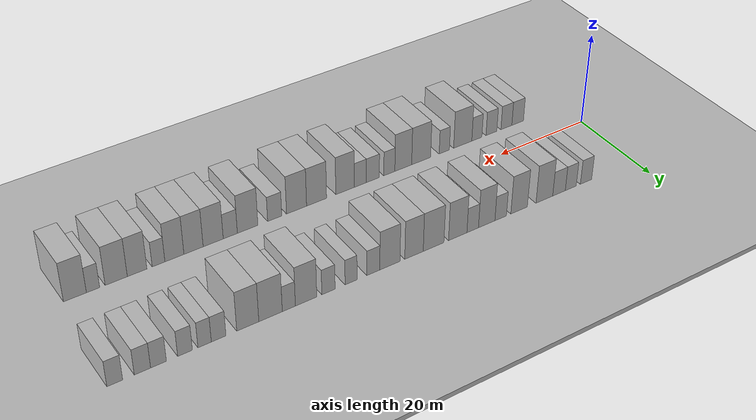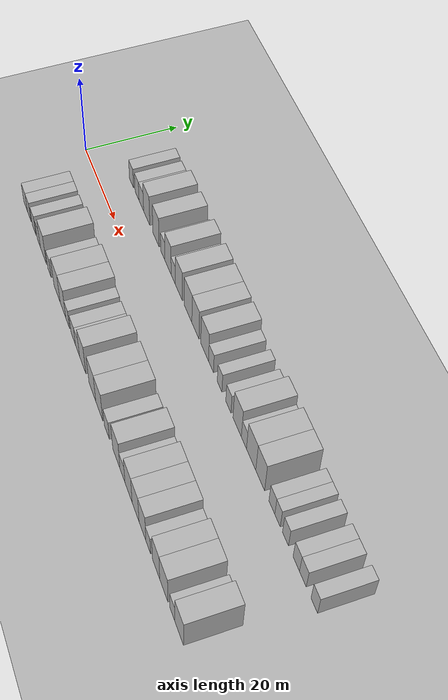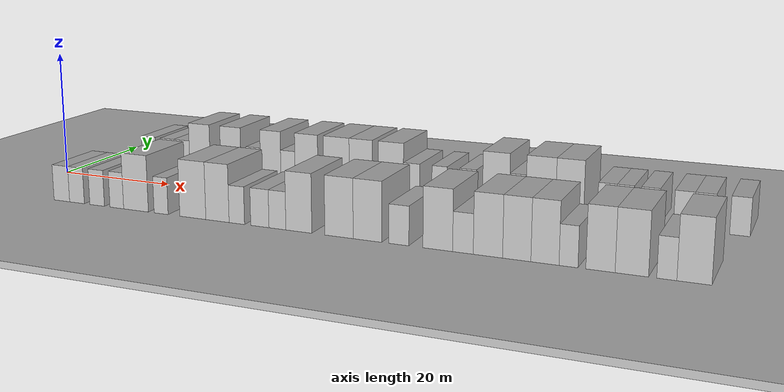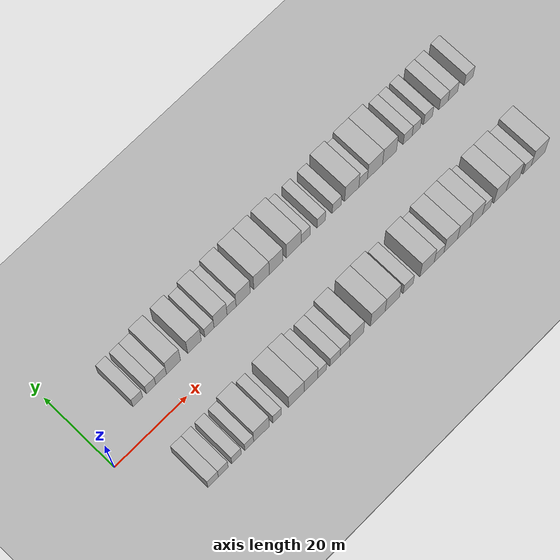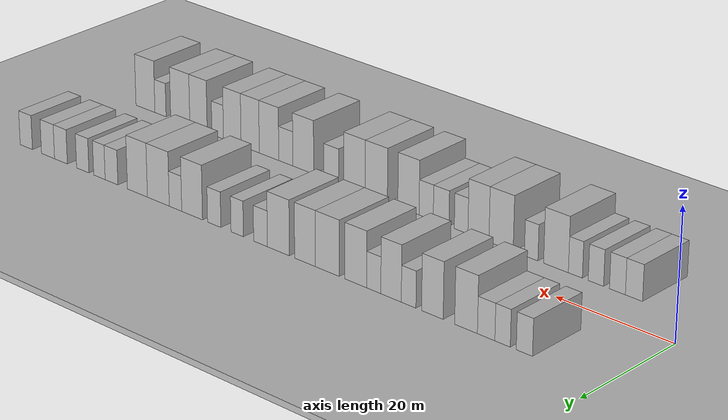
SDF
<sdf version="1.6">
 <world name="default">
  <include><name>ground_plane_1</name><uri>model://HANNAS_ground_plane</uri></include>
  <include>
   <name>ground_plane_2</name>
   <uri>model://HANNAS_ground_plane</uri>
   <pose>100 0 0  0 0 0</pose>
  </include>
  <model name="building_1">
   <static>1</static>
   <pose>12.3593 11.0000 0 0.000000 0.000000 1.570796</pose>
   <link name="link">
    <pose>0 0 3.00 0 0 0</pose>
    <collision name="collision"><geometry><box><size>10.0000 2.7185 6.0000</size></box></geometry></collision>
    <visual name="visual">
     <cast_shadows>0</cast_shadows>
     <geometry><box><size>10.0000 2.7185 6.0000</size></box></geometry>
     <material>
      <script>
       <uri>model://HANNAS_wall/materials/scripts</uri>
       <uri>model://HANNAS_wall/materials/textures</uri>
       <name>vrc/HANNAS_wall</name>
      </script>
     </material>
    </visual>
   </link>
  </model>
  <model name="building_2">
   <static>1</static>
   <pose>16.0217 11.0000 0 0.000000 0.000000 1.570796</pose>
   <link name="link">
    <pose>0 0 3.00 0 0 0</pose>
    <collision name="collision"><geometry><box><size>10.0000 2.6065 6.0000</size></box></geometry></collision>
    <visual name="visual">
     <cast_shadows>0</cast_shadows>
     <geometry><box><size>10.0000 2.6065 6.0000</size></box></geometry>
     <material>
      <script>
       <uri>model://HANNAS_wall/materials/scripts</uri>
       <uri>model://HANNAS_wall/materials/textures</uri>
       <name>vrc/HANNAS_wall</name>
      </script>
     </material>
    </visual>
   </link>
  </model>
  <model name="building_3">
   <static>1</static>
   <pose>18.8137 11.0000 0 0.000000 0.000000 1.570796</pose>
   <link name="link">
    <pose>0 0 3.00 0 0 0</pose>
    <collision name="collision"><geometry><box><size>10.0000 2.9775 6.0000</size></box></geometry></collision>
    <visual name="visual">
     <cast_shadows>0</cast_shadows>
     <geometry><box><size>10.0000 2.9775 6.0000</size></box></geometry>
     <material>
      <script>
       <uri>model://HANNAS_wall/materials/scripts</uri>
       <uri>model://HANNAS_wall/materials/textures</uri>
       <name>vrc/HANNAS_wall</name>
      </script>
     </material>
    </visual>
   </link>
  </model>
  <model name="building_4">
   <static>1</static>
   <pose>22.2599 11.0000 0 0.000000 0.000000 1.570796</pose>
   <link name="link">
    <pose>0 0 4.50 0 0 0</pose>
    <collision name="collision"><geometry><box><size>10.0000 3.9149 9.0000</size></box></geometry></collision>
    <visual name="visual">
     <cast_shadows>0</cast_shadows>
     <geometry><box><size>10.0000 3.9149 9.0000</size></box></geometry>
     <material>
      <script>
       <uri>model://HANNAS_wall/materials/scripts</uri>
       <uri>model://HANNAS_wall/materials/textures</uri>
       <name>vrc/HANNAS_wall</name>
      </script>
     </material>
    </visual>
   </link>
  </model>
  <model name="building_5">
   <static>1</static>
   <pose>28.1129 11.0000 0 0.000000 0.000000 1.570796</pose>
   <link name="link">
    <pose>0 0 4.50 0 0 0</pose>
    <collision name="collision"><geometry><box><size>10.0000 3.7910 9.0000</size></box></geometry></collision>
    <visual name="visual">
     <cast_shadows>0</cast_shadows>
     <geometry><box><size>10.0000 3.7910 9.0000</size></box></geometry>
     <material>
      <script>
       <uri>model://HANNAS_wall/materials/scripts</uri>
       <uri>model://HANNAS_wall/materials/textures</uri>
       <name>vrc/HANNAS_wall</name>
      </script>
     </material>
    </visual>
   </link>
  </model>
  <model name="building_6">
   <static>1</static>
   <pose>32.3112 11.0000 0 0.000000 0.000000 1.570796</pose>
   <link name="link">
    <pose>0 0 3.00 0 0 0</pose>
    <collision name="collision"><geometry><box><size>10.0000 2.6057 6.0000</size></box></geometry></collision>
    <visual name="visual">
     <cast_shadows>0</cast_shadows>
     <geometry><box><size>10.0000 2.6057 6.0000</size></box></geometry>
     <material>
      <script>
       <uri>model://HANNAS_wall/materials/scripts</uri>
       <uri>model://HANNAS_wall/materials/textures</uri>
       <name>vrc/HANNAS_wall</name>
      </script>
     </material>
    </visual>
   </link>
  </model>
  <model name="building_7">
   <static>1</static>
   <pose>35.4531 11.0000 0 0.000000 0.000000 1.570796</pose>
   <link name="link">
    <pose>0 0 4.50 0 0 0</pose>
    <collision name="collision"><geometry><box><size>10.0000 3.6782 9.0000</size></box></geometry></collision>
    <visual name="visual">
     <cast_shadows>0</cast_shadows>
     <geometry><box><size>10.0000 3.6782 9.0000</size></box></geometry>
     <material>
      <script>
       <uri>model://HANNAS_wall/materials/scripts</uri>
       <uri>model://HANNAS_wall/materials/textures</uri>
       <name>vrc/HANNAS_wall</name>
      </script>
     </material>
    </visual>
   </link>
  </model>
  <model name="building_8">
   <static>1</static>
   <pose>38.5701 11.0000 0 0.000000 0.000000 1.570796</pose>
   <link name="link">
    <pose>0 0 3.00 0 0 0</pose>
    <collision name="collision"><geometry><box><size>10.0000 2.5557 6.0000</size></box></geometry></collision>
    <visual name="visual">
     <cast_shadows>0</cast_shadows>
     <geometry><box><size>10.0000 2.5557 6.0000</size></box></geometry>
     <material>
      <script>
       <uri>model://HANNAS_wall/materials/scripts</uri>
       <uri>model://HANNAS_wall/materials/textures</uri>
       <name>vrc/HANNAS_wall</name>
      </script>
     </material>
    </visual>
   </link>
  </model>
  <model name="building_9">
   <static>1</static>
   <pose>41.8606 11.0000 0 0.000000 0.000000 1.570796</pose>
   <link name="link">
    <pose>0 0 4.50 0 0 0</pose>
    <collision name="collision"><geometry><box><size>10.0000 4.0254 9.0000</size></box></geometry></collision>
    <visual name="visual">
     <cast_shadows>0</cast_shadows>
     <geometry><box><size>10.0000 4.0254 9.0000</size></box></geometry>
     <material>
      <script>
       <uri>model://HANNAS_wall/materials/scripts</uri>
       <uri>model://HANNAS_wall/materials/textures</uri>
       <name>vrc/HANNAS_wall</name>
      </script>
     </material>
    </visual>
   </link>
  </model>
  <model name="building_10">
   <static>1</static>
   <pose>47.0962 11.0000 0 0.000000 0.000000 1.570796</pose>
   <link name="link">
    <pose>0 0 4.50 0 0 0</pose>
    <collision name="collision"><geometry><box><size>10.0000 4.4458 9.0000</size></box></geometry></collision>
    <visual name="visual">
     <cast_shadows>0</cast_shadows>
     <geometry><box><size>10.0000 4.4458 9.0000</size></box></geometry>
     <material>
      <script>
       <uri>model://HANNAS_wall/materials/scripts</uri>
       <uri>model://HANNAS_wall/materials/textures</uri>
       <name>vrc/HANNAS_wall</name>
      </script>
     </material>
    </visual>
   </link>
  </model>
  <model name="building_11">
   <static>1</static>
   <pose>51.2777 11.0000 0 0.000000 0.000000 1.570796</pose>
   <link name="link">
    <pose>0 0 4.50 0 0 0</pose>
    <collision name="collision"><geometry><box><size>10.0000 3.9171 9.0000</size></box></geometry></collision>
    <visual name="visual">
     <cast_shadows>0</cast_shadows>
     <geometry><box><size>10.0000 3.9171 9.0000</size></box></geometry>
     <material>
      <script>
       <uri>model://HANNAS_wall/materials/scripts</uri>
       <uri>model://HANNAS_wall/materials/textures</uri>
       <name>vrc/HANNAS_wall</name>
      </script>
     </material>
    </visual>
   </link>
  </model>
  <model name="building_12">
   <static>1</static>
   <pose>56.3384 11.0000 0 0.000000 0.000000 1.570796</pose>
   <link name="link">
    <pose>0 0 4.50 0 0 0</pose>
    <collision name="collision"><geometry><box><size>10.0000 4.2043 9.0000</size></box></geometry></collision>
    <visual name="visual">
     <cast_shadows>0</cast_shadows>
     <geometry><box><size>10.0000 4.2043 9.0000</size></box></geometry>
     <material>
      <script>
       <uri>model://HANNAS_wall/materials/scripts</uri>
       <uri>model://HANNAS_wall/materials/textures</uri>
       <name>vrc/HANNAS_wall</name>
      </script>
     </material>
    </visual>
   </link>
  </model>
  <model name="building_13">
   <static>1</static>
   <pose>59.7676 11.0000 0 0.000000 0.000000 1.570796</pose>
   <link name="link">
    <pose>0 0 3.00 0 0 0</pose>
    <collision name="collision"><geometry><box><size>10.0000 2.6540 6.0000</size></box></geometry></collision>
    <visual name="visual">
     <cast_shadows>0</cast_shadows>
     <geometry><box><size>10.0000 2.6540 6.0000</size></box></geometry>
     <material>
      <script>
       <uri>model://HANNAS_wall/materials/scripts</uri>
       <uri>model://HANNAS_wall/materials/textures</uri>
       <name>vrc/HANNAS_wall</name>
      </script>
     </material>
    </visual>
   </link>
  </model>
  <model name="building_14">
   <static>1</static>
   <pose>64.3065 11.0000 0 0.000000 0.000000 1.570796</pose>
   <link name="link">
    <pose>0 0 3.00 0 0 0</pose>
    <collision name="collision"><geometry><box><size>10.0000 2.4238 6.0000</size></box></geometry></collision>
    <visual name="visual">
     <cast_shadows>0</cast_shadows>
     <geometry><box><size>10.0000 2.4238 6.0000</size></box></geometry>
     <material>
      <script>
       <uri>model://HANNAS_wall/materials/scripts</uri>
       <uri>model://HANNAS_wall/materials/textures</uri>
       <name>vrc/HANNAS_wall</name>
      </script>
     </material>
    </visual>
   </link>
  </model>
  <model name="building_15">
   <static>1</static>
   <pose>68.8407 11.0000 0 0.000000 0.000000 1.570796</pose>
   <link name="link">
    <pose>0 0 3.00 0 0 0</pose>
    <collision name="collision"><geometry><box><size>10.0000 2.6445 6.0000</size></box></geometry></collision>
    <visual name="visual">
     <cast_shadows>0</cast_shadows>
     <geometry><box><size>10.0000 2.6445 6.0000</size></box></geometry>
     <material>
      <script>
       <uri>model://HANNAS_wall/materials/scripts</uri>
       <uri>model://HANNAS_wall/materials/textures</uri>
       <name>vrc/HANNAS_wall</name>
      </script>
     </material>
    </visual>
   </link>
  </model>
  <model name="building_16">
   <static>1</static>
   <pose>73.2525 11.0000 0 0.000000 0.000000 1.570796</pose>
   <link name="link">
    <pose>0 0 4.50 0 0 0</pose>
    <collision name="collision"><geometry><box><size>10.0000 4.1791 9.0000</size></box></geometry></collision>
    <visual name="visual">
     <cast_shadows>0</cast_shadows>
     <geometry><box><size>10.0000 4.1791 9.0000</size></box></geometry>
     <material>
      <script>
       <uri>model://HANNAS_wall/materials/scripts</uri>
       <uri>model://HANNAS_wall/materials/textures</uri>
       <name>vrc/HANNAS_wall</name>
      </script>
     </material>
    </visual>
   </link>
  </model>
  <model name="building_17">
   <static>1</static>
   <pose>76.6063 11.0000 0 0.000000 0.000000 1.570796</pose>
   <link name="link">
    <pose>0 0 3.00 0 0 0</pose>
    <collision name="collision"><geometry><box><size>10.0000 2.5286 6.0000</size></box></geometry></collision>
    <visual name="visual">
     <cast_shadows>0</cast_shadows>
     <geometry><box><size>10.0000 2.5286 6.0000</size></box></geometry>
     <material>
      <script>
       <uri>model://HANNAS_wall/materials/scripts</uri>
       <uri>model://HANNAS_wall/materials/textures</uri>
       <name>vrc/HANNAS_wall</name>
      </script>
     </material>
    </visual>
   </link>
  </model>
  <model name="building_18">
   <static>1</static>
   <pose>80.1111 11.0000 0 0.000000 0.000000 1.570796</pose>
   <link name="link">
    <pose>0 0 4.50 0 0 0</pose>
    <collision name="collision"><geometry><box><size>10.0000 4.4809 9.0000</size></box></geometry></collision>
    <visual name="visual">
     <cast_shadows>0</cast_shadows>
     <geometry><box><size>10.0000 4.4809 9.0000</size></box></geometry>
     <material>
      <script>
       <uri>model://HANNAS_wall/materials/scripts</uri>
       <uri>model://HANNAS_wall/materials/textures</uri>
       <name>vrc/HANNAS_wall</name>
      </script>
     </material>
    </visual>
   </link>
  </model>
  <model name="building_19">
   <static>1</static>
   <pose>84.4276 11.0000 0 0.000000 0.000000 1.570796</pose>
   <link name="link">
    <pose>0 0 4.50 0 0 0</pose>
    <collision name="collision"><geometry><box><size>10.0000 4.1520 9.0000</size></box></geometry></collision>
    <visual name="visual">
     <cast_shadows>0</cast_shadows>
     <geometry><box><size>10.0000 4.1520 9.0000</size></box></geometry>
     <material>
      <script>
       <uri>model://HANNAS_wall/materials/scripts</uri>
       <uri>model://HANNAS_wall/materials/textures</uri>
       <name>vrc/HANNAS_wall</name>
      </script>
     </material>
    </visual>
   </link>
  </model>
  <model name="building_20">
   <static>1</static>
   <pose>89.8496 11.0000 0 0.000000 0.000000 1.570796</pose>
   <link name="link">
    <pose>0 0 3.00 0 0 0</pose>
    <collision name="collision"><geometry><box><size>10.0000 2.6919 6.0000</size></box></geometry></collision>
    <visual name="visual">
     <cast_shadows>0</cast_shadows>
     <geometry><box><size>10.0000 2.6919 6.0000</size></box></geometry>
     <material>
      <script>
       <uri>model://HANNAS_wall/materials/scripts</uri>
       <uri>model://HANNAS_wall/materials/textures</uri>
       <name>vrc/HANNAS_wall</name>
      </script>
     </material>
    </visual>
   </link>
  </model>
  <model name="building_21">
   <static>1</static>
   <pose>92.4161 11.0000 0 0.000000 0.000000 1.570796</pose>
   <link name="link">
    <pose>0 0 3.00 0 0 0</pose>
    <collision name="collision"><geometry><box><size>10.0000 2.4411 6.0000</size></box></geometry></collision>
    <visual name="visual">
     <cast_shadows>0</cast_shadows>
     <geometry><box><size>10.0000 2.4411 6.0000</size></box></geometry>
     <material>
      <script>
       <uri>model://HANNAS_wall/materials/scripts</uri>
       <uri>model://HANNAS_wall/materials/textures</uri>
       <name>vrc/HANNAS_wall</name>
      </script>
     </material>
    </visual>
   </link>
  </model>
  <model name="building_22">
   <static>1</static>
   <pose>95.9638 11.0000 0 0.000000 0.000000 1.570796</pose>
   <link name="link">
    <pose>0 0 3.00 0 0 0</pose>
    <collision name="collision"><geometry><box><size>10.0000 2.6543 6.0000</size></box></geometry></collision>
    <visual name="visual">
     <cast_shadows>0</cast_shadows>
     <geometry><box><size>10.0000 2.6543 6.0000</size></box></geometry>
     <material>
      <script>
       <uri>model://HANNAS_wall/materials/scripts</uri>
       <uri>model://HANNAS_wall/materials/textures</uri>
       <name>vrc/HANNAS_wall</name>
      </script>
     </material>
    </visual>
   </link>
  </model>
  <model name="building_23">
   <static>1</static>
   <pose>100.6855 11.0000 0 0.000000 0.000000 1.570796</pose>
   <link name="link">
    <pose>0 0 3.00 0 0 0</pose>
    <collision name="collision"><geometry><box><size>10.0000 2.7892 6.0000</size></box></geometry></collision>
    <visual name="visual">
     <cast_shadows>0</cast_shadows>
     <geometry><box><size>10.0000 2.7892 6.0000</size></box></geometry>
     <material>
      <script>
       <uri>model://HANNAS_wall/materials/scripts</uri>
       <uri>model://HANNAS_wall/materials/textures</uri>
       <name>vrc/HANNAS_wall</name>
      </script>
     </material>
    </visual>
   </link>
  </model>
  <model name="building_24">
   <static>1</static>
   <pose>103.5084 11.0000 0 0.000000 0.000000 1.570796</pose>
   <link name="link">
    <pose>0 0 3.00 0 0 0</pose>
    <collision name="collision"><geometry><box><size>10.0000 2.8566 6.0000</size></box></geometry></collision>
    <visual name="visual">
     <cast_shadows>0</cast_shadows>
     <geometry><box><size>10.0000 2.8566 6.0000</size></box></geometry>
     <material>
      <script>
       <uri>model://HANNAS_wall/materials/scripts</uri>
       <uri>model://HANNAS_wall/materials/textures</uri>
       <name>vrc/HANNAS_wall</name>
      </script>
     </material>
    </visual>
   </link>
  </model>
  <model name="building_25">
   <static>1</static>
   <pose>108.2982 11.0000 0 0.000000 0.000000 1.570796</pose>
   <link name="link">
    <pose>0 0 3.00 0 0 0</pose>
    <collision name="collision"><geometry><box><size>10.0000 2.7230 6.0000</size></box></geometry></collision>
    <visual name="visual">
     <cast_shadows>0</cast_shadows>
     <geometry><box><size>10.0000 2.7230 6.0000</size></box></geometry>
     <material>
      <script>
       <uri>model://HANNAS_wall/materials/scripts</uri>
       <uri>model://HANNAS_wall/materials/textures</uri>
       <name>vrc/HANNAS_wall</name>
      </script>
     </material>
    </visual>
   </link>
  </model>
  <model name="building_50">
   <static>1</static>
   <pose>11.4436 -11.0000 0 0.000000 0.000000 1.570796</pose>
   <link name="link">
    <pose>0 0 3.00 0 0 0</pose>
    <collision name="collision"><geometry><box><size>10.0000 2.8872 6.0000</size></box></geometry></collision>
    <visual name="visual">
     <cast_shadows>0</cast_shadows>
     <geometry><box><size>10.0000 2.8872 6.0000</size></box></geometry>
     <material>
      <script>
       <uri>model://HANNAS_wall/materials/scripts</uri>
       <uri>model://HANNAS_wall/materials/textures</uri>
       <name>vrc/HANNAS_wall</name>
      </script>
     </material>
    </visual>
   </link>
  </model>
  <model name="building_51">
   <static>1</static>
   <pose>14.2404 -11.0000 0 0.000000 0.000000 1.570796</pose>
   <link name="link">
    <pose>0 0 3.00 0 0 0</pose>
    <collision name="collision"><geometry><box><size>10.0000 2.7065 6.0000</size></box></geometry></collision>
    <visual name="visual">
     <cast_shadows>0</cast_shadows>
     <geometry><box><size>10.0000 2.7065 6.0000</size></box></geometry>
     <material>
      <script>
       <uri>model://HANNAS_wall/materials/scripts</uri>
       <uri>model://HANNAS_wall/materials/textures</uri>
       <name>vrc/HANNAS_wall</name>
      </script>
     </material>
    </visual>
   </link>
  </model>
  <model name="building_52">
   <static>1</static>
   <pose>17.9143 -11.0000 0 0.000000 0.000000 1.570796</pose>
   <link name="link">
    <pose>0 0 3.00 0 0 0</pose>
    <collision name="collision"><geometry><box><size>10.0000 2.6412 6.0000</size></box></geometry></collision>
    <visual name="visual">
     <cast_shadows>0</cast_shadows>
     <geometry><box><size>10.0000 2.6412 6.0000</size></box></geometry>
     <material>
      <script>
       <uri>model://HANNAS_wall/materials/scripts</uri>
       <uri>model://HANNAS_wall/materials/textures</uri>
       <name>vrc/HANNAS_wall</name>
      </script>
     </material>
    </visual>
   </link>
  </model>
  <model name="building_53">
   <static>1</static>
   <pose>21.4521 -11.0000 0 0.000000 0.000000 1.570796</pose>
   <link name="link">
    <pose>0 0 3.00 0 0 0</pose>
    <collision name="collision"><geometry><box><size>10.0000 2.4344 6.0000</size></box></geometry></collision>
    <visual name="visual">
     <cast_shadows>0</cast_shadows>
     <geometry><box><size>10.0000 2.4344 6.0000</size></box></geometry>
     <material>
      <script>
       <uri>model://HANNAS_wall/materials/scripts</uri>
       <uri>model://HANNAS_wall/materials/textures</uri>
       <name>vrc/HANNAS_wall</name>
      </script>
     </material>
    </visual>
   </link>
  </model>
  <model name="building_54">
   <static>1</static>
   <pose>24.8394 -11.0000 0 0.000000 0.000000 1.570796</pose>
   <link name="link">
    <pose>0 0 4.50 0 0 0</pose>
    <collision name="collision"><geometry><box><size>10.0000 4.3403 9.0000</size></box></geometry></collision>
    <visual name="visual">
     <cast_shadows>0</cast_shadows>
     <geometry><box><size>10.0000 4.3403 9.0000</size></box></geometry>
     <material>
      <script>
       <uri>model://HANNAS_wall/materials/scripts</uri>
       <uri>model://HANNAS_wall/materials/textures</uri>
       <name>vrc/HANNAS_wall</name>
      </script>
     </material>
    </visual>
   </link>
  </model>
  <model name="building_55">
   <static>1</static>
   <pose>29.2143 -11.0000 0 0.000000 0.000000 1.570796</pose>
   <link name="link">
    <pose>0 0 3.00 0 0 0</pose>
    <collision name="collision"><geometry><box><size>10.0000 2.4095 6.0000</size></box></geometry></collision>
    <visual name="visual">
     <cast_shadows>0</cast_shadows>
     <geometry><box><size>10.0000 2.4095 6.0000</size></box></geometry>
     <material>
      <script>
       <uri>model://HANNAS_wall/materials/scripts</uri>
       <uri>model://HANNAS_wall/materials/textures</uri>
       <name>vrc/HANNAS_wall</name>
      </script>
     </material>
    </visual>
   </link>
  </model>
  <model name="building_56">
   <static>1</static>
   <pose>34.6080 -11.0000 0 0.000000 0.000000 1.570796</pose>
   <link name="link">
    <pose>0 0 4.50 0 0 0</pose>
    <collision name="collision"><geometry><box><size>10.0000 4.3778 9.0000</size></box></geometry></collision>
    <visual name="visual">
     <cast_shadows>0</cast_shadows>
     <geometry><box><size>10.0000 4.3778 9.0000</size></box></geometry>
     <material>
      <script>
       <uri>model://HANNAS_wall/materials/scripts</uri>
       <uri>model://HANNAS_wall/materials/textures</uri>
       <name>vrc/HANNAS_wall</name>
      </script>
     </material>
    </visual>
   </link>
  </model>
  <model name="building_57">
   <static>1</static>
   <pose>38.7170 -11.0000 0 0.000000 0.000000 1.570796</pose>
   <link name="link">
    <pose>0 0 4.50 0 0 0</pose>
    <collision name="collision"><geometry><box><size>10.0000 3.8402 9.0000</size></box></geometry></collision>
    <visual name="visual">
     <cast_shadows>0</cast_shadows>
     <geometry><box><size>10.0000 3.8402 9.0000</size></box></geometry>
     <material>
      <script>
       <uri>model://HANNAS_wall/materials/scripts</uri>
       <uri>model://HANNAS_wall/materials/textures</uri>
       <name>vrc/HANNAS_wall</name>
      </script>
     </material>
    </visual>
   </link>
  </model>
  <model name="building_58">
   <static>1</static>
   <pose>41.8898 -11.0000 0 0.000000 0.000000 1.570796</pose>
   <link name="link">
    <pose>0 0 3.00 0 0 0</pose>
    <collision name="collision"><geometry><box><size>10.0000 2.5053 6.0000</size></box></geometry></collision>
    <visual name="visual">
     <cast_shadows>0</cast_shadows>
     <geometry><box><size>10.0000 2.5053 6.0000</size></box></geometry>
     <material>
      <script>
       <uri>model://HANNAS_wall/materials/scripts</uri>
       <uri>model://HANNAS_wall/materials/textures</uri>
       <name>vrc/HANNAS_wall</name>
      </script>
     </material>
    </visual>
   </link>
  </model>
  <model name="building_59">
   <static>1</static>
   <pose>45.6029 -11.0000 0 0.000000 0.000000 1.570796</pose>
   <link name="link">
    <pose>0 0 3.00 0 0 0</pose>
    <collision name="collision"><geometry><box><size>10.0000 2.9210 6.0000</size></box></geometry></collision>
    <visual name="visual">
     <cast_shadows>0</cast_shadows>
     <geometry><box><size>10.0000 2.9210 6.0000</size></box></geometry>
     <material>
      <script>
       <uri>model://HANNAS_wall/materials/scripts</uri>
       <uri>model://HANNAS_wall/materials/textures</uri>
       <name>vrc/HANNAS_wall</name>
      </script>
     </material>
    </visual>
   </link>
  </model>
  <model name="building_60">
   <static>1</static>
   <pose>48.3964 -11.0000 0 0.000000 0.000000 1.570796</pose>
   <link name="link">
    <pose>0 0 3.00 0 0 0</pose>
    <collision name="collision"><geometry><box><size>10.0000 2.6661 6.0000</size></box></geometry></collision>
    <visual name="visual">
     <cast_shadows>0</cast_shadows>
     <geometry><box><size>10.0000 2.6661 6.0000</size></box></geometry>
     <material>
      <script>
       <uri>model://HANNAS_wall/materials/scripts</uri>
       <uri>model://HANNAS_wall/materials/textures</uri>
       <name>vrc/HANNAS_wall</name>
      </script>
     </material>
    </visual>
   </link>
  </model>
  <model name="building_61">
   <static>1</static>
   <pose>51.7453 -11.0000 0 0.000000 0.000000 1.570796</pose>
   <link name="link">
    <pose>0 0 4.50 0 0 0</pose>
    <collision name="collision"><geometry><box><size>10.0000 4.0317 9.0000</size></box></geometry></collision>
    <visual name="visual">
     <cast_shadows>0</cast_shadows>
     <geometry><box><size>10.0000 4.0317 9.0000</size></box></geometry>
     <material>
      <script>
       <uri>model://HANNAS_wall/materials/scripts</uri>
       <uri>model://HANNAS_wall/materials/textures</uri>
       <name>vrc/HANNAS_wall</name>
      </script>
     </material>
    </visual>
   </link>
  </model>
  <model name="building_62">
   <static>1</static>
   <pose>57.9001 -11.0000 0 0.000000 0.000000 1.570796</pose>
   <link name="link">
    <pose>0 0 4.50 0 0 0</pose>
    <collision name="collision"><geometry><box><size>10.0000 4.2780 9.0000</size></box></geometry></collision>
    <visual name="visual">
     <cast_shadows>0</cast_shadows>
     <geometry><box><size>10.0000 4.2780 9.0000</size></box></geometry>
     <material>
      <script>
       <uri>model://HANNAS_wall/materials/scripts</uri>
       <uri>model://HANNAS_wall/materials/textures</uri>
       <name>vrc/HANNAS_wall</name>
      </script>
     </material>
    </visual>
   </link>
  </model>
  <model name="building_63">
   <static>1</static>
   <pose>62.1580 -11.0000 0 0.000000 0.000000 1.570796</pose>
   <link name="link">
    <pose>0 0 4.50 0 0 0</pose>
    <collision name="collision"><geometry><box><size>10.0000 4.2378 9.0000</size></box></geometry></collision>
    <visual name="visual">
     <cast_shadows>0</cast_shadows>
     <geometry><box><size>10.0000 4.2378 9.0000</size></box></geometry>
     <material>
      <script>
       <uri>model://HANNAS_wall/materials/scripts</uri>
       <uri>model://HANNAS_wall/materials/textures</uri>
       <name>vrc/HANNAS_wall</name>
      </script>
     </material>
    </visual>
   </link>
  </model>
  <model name="building_64">
   <static>1</static>
   <pose>66.7465 -11.0000 0 0.000000 0.000000 1.570796</pose>
   <link name="link">
    <pose>0 0 3.00 0 0 0</pose>
    <collision name="collision"><geometry><box><size>10.0000 2.9391 6.0000</size></box></geometry></collision>
    <visual name="visual">
     <cast_shadows>0</cast_shadows>
     <geometry><box><size>10.0000 2.9391 6.0000</size></box></geometry>
     <material>
      <script>
       <uri>model://HANNAS_wall/materials/scripts</uri>
       <uri>model://HANNAS_wall/materials/textures</uri>
       <name>vrc/HANNAS_wall</name>
      </script>
     </material>
    </visual>
   </link>
  </model>
  <model name="building_65">
   <static>1</static>
   <pose>72.3120 -11.0000 0 0.000000 0.000000 1.570796</pose>
   <link name="link">
    <pose>0 0 4.50 0 0 0</pose>
    <collision name="collision"><geometry><box><size>10.0000 4.1919 9.0000</size></box></geometry></collision>
    <visual name="visual">
     <cast_shadows>0</cast_shadows>
     <geometry><box><size>10.0000 4.1919 9.0000</size></box></geometry>
     <material>
      <script>
       <uri>model://HANNAS_wall/materials/scripts</uri>
       <uri>model://HANNAS_wall/materials/textures</uri>
       <name>vrc/HANNAS_wall</name>
      </script>
     </material>
    </visual>
   </link>
  </model>
  <model name="building_66">
   <static>1</static>
   <pose>75.8344 -11.0000 0 0.000000 0.000000 1.570796</pose>
   <link name="link">
    <pose>0 0 3.00 0 0 0</pose>
    <collision name="collision"><geometry><box><size>10.0000 2.8529 6.0000</size></box></geometry></collision>
    <visual name="visual">
     <cast_shadows>0</cast_shadows>
     <geometry><box><size>10.0000 2.8529 6.0000</size></box></geometry>
     <material>
      <script>
       <uri>model://HANNAS_wall/materials/scripts</uri>
       <uri>model://HANNAS_wall/materials/textures</uri>
       <name>vrc/HANNAS_wall</name>
      </script>
     </material>
    </visual>
   </link>
  </model>
  <model name="building_67">
   <static>1</static>
   <pose>79.2584 -11.0000 0 0.000000 0.000000 1.570796</pose>
   <link name="link">
    <pose>0 0 4.50 0 0 0</pose>
    <collision name="collision"><geometry><box><size>10.0000 3.9952 9.0000</size></box></geometry></collision>
    <visual name="visual">
     <cast_shadows>0</cast_shadows>
     <geometry><box><size>10.0000 3.9952 9.0000</size></box></geometry>
     <material>
      <script>
       <uri>model://HANNAS_wall/materials/scripts</uri>
       <uri>model://HANNAS_wall/materials/textures</uri>
       <name>vrc/HANNAS_wall</name>
      </script>
     </material>
    </visual>
   </link>
  </model>
  <model name="building_68">
   <static>1</static>
   <pose>83.1454 -11.0000 0 0.000000 0.000000 1.570796</pose>
   <link name="link">
    <pose>0 0 4.50 0 0 0</pose>
    <collision name="collision"><geometry><box><size>10.0000 3.7787 9.0000</size></box></geometry></collision>
    <visual name="visual">
     <cast_shadows>0</cast_shadows>
     <geometry><box><size>10.0000 3.7787 9.0000</size></box></geometry>
     <material>
      <script>
       <uri>model://HANNAS_wall/materials/scripts</uri>
       <uri>model://HANNAS_wall/materials/textures</uri>
       <name>vrc/HANNAS_wall</name>
      </script>
     </material>
    </visual>
   </link>
  </model>
  <model name="building_69">
   <static>1</static>
   <pose>86.8792 -11.0000 0 0.000000 0.000000 1.570796</pose>
   <link name="link">
    <pose>0 0 4.50 0 0 0</pose>
    <collision name="collision"><geometry><box><size>10.0000 3.6890 9.0000</size></box></geometry></collision>
    <visual name="visual">
     <cast_shadows>0</cast_shadows>
     <geometry><box><size>10.0000 3.6890 9.0000</size></box></geometry>
     <material>
      <script>
       <uri>model://HANNAS_wall/materials/scripts</uri>
       <uri>model://HANNAS_wall/materials/textures</uri>
       <name>vrc/HANNAS_wall</name>
      </script>
     </material>
    </visual>
   </link>
  </model>
  <model name="building_70">
   <static>1</static>
   <pose>89.9473 -11.0000 0 0.000000 0.000000 1.570796</pose>
   <link name="link">
    <pose>0 0 3.00 0 0 0</pose>
    <collision name="collision"><geometry><box><size>10.0000 2.4471 6.0000</size></box></geometry></collision>
    <visual name="visual">
     <cast_shadows>0</cast_shadows>
     <geometry><box><size>10.0000 2.4471 6.0000</size></box></geometry>
     <material>
      <script>
       <uri>model://HANNAS_wall/materials/scripts</uri>
       <uri>model://HANNAS_wall/materials/textures</uri>
       <name>vrc/HANNAS_wall</name>
      </script>
     </material>
    </visual>
   </link>
  </model>
  <model name="building_71">
   <static>1</static>
   <pose>94.0235 -11.0000 0 0.000000 0.000000 1.570796</pose>
   <link name="link">
    <pose>0 0 4.50 0 0 0</pose>
    <collision name="collision"><geometry><box><size>10.0000 3.7054 9.0000</size></box></geometry></collision>
    <visual name="visual">
     <cast_shadows>0</cast_shadows>
     <geometry><box><size>10.0000 3.7054 9.0000</size></box></geometry>
     <material>
      <script>
       <uri>model://HANNAS_wall/materials/scripts</uri>
       <uri>model://HANNAS_wall/materials/textures</uri>
       <name>vrc/HANNAS_wall</name>
      </script>
     </material>
    </visual>
   </link>
  </model>
  <model name="building_72">
   <static>1</static>
   <pose>97.9492 -11.0000 0 0.000000 0.000000 1.570796</pose>
   <link name="link">
    <pose>0 0 4.50 0 0 0</pose>
    <collision name="collision"><geometry><box><size>10.0000 4.1459 9.0000</size></box></geometry></collision>
    <visual name="visual">
     <cast_shadows>0</cast_shadows>
     <geometry><box><size>10.0000 4.1459 9.0000</size></box></geometry>
     <material>
      <script>
       <uri>model://HANNAS_wall/materials/scripts</uri>
       <uri>model://HANNAS_wall/materials/textures</uri>
       <name>vrc/HANNAS_wall</name>
      </script>
     </material>
    </visual>
   </link>
  </model>
  <model name="building_73">
   <static>1</static>
   <pose>102.2392 -11.0000 0 0.000000 0.000000 1.570796</pose>
   <link name="link">
    <pose>0 0 3.00 0 0 0</pose>
    <collision name="collision"><geometry><box><size>10.0000 2.4342 6.0000</size></box></geometry></collision>
    <visual name="visual">
     <cast_shadows>0</cast_shadows>
     <geometry><box><size>10.0000 2.4342 6.0000</size></box></geometry>
     <material>
      <script>
       <uri>model://HANNAS_wall/materials/scripts</uri>
       <uri>model://HANNAS_wall/materials/textures</uri>
       <name>vrc/HANNAS_wall</name>
      </script>
     </material>
    </visual>
   </link>
  </model>
  <model name="building_74">
   <static>1</static>
   <pose>105.5467 -11.0000 0 0.000000 0.000000 1.570796</pose>
   <link name="link">
    <pose>0 0 4.50 0 0 0</pose>
    <collision name="collision"><geometry><box><size>10.0000 4.1807 9.0000</size></box></geometry></collision>
    <visual name="visual">
     <cast_shadows>0</cast_shadows>
     <geometry><box><size>10.0000 4.1807 9.0000</size></box></geometry>
     <material>
      <script>
       <uri>model://HANNAS_wall/materials/scripts</uri>
       <uri>model://HANNAS_wall/materials/textures</uri>
       <name>vrc/HANNAS_wall</name>
      </script>
     </material>
    </visual>
   </link>
  </model>
 </world>
</sdf>
